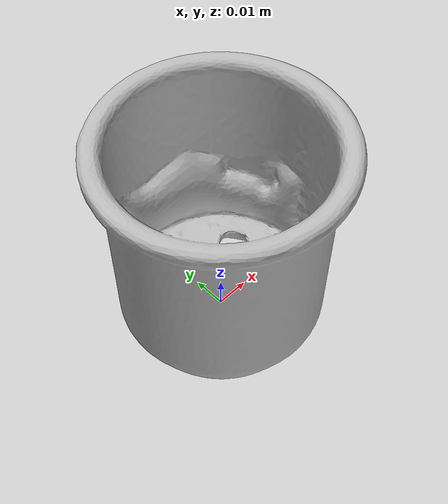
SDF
<?xml version="1.0" ?>
<sdf version='1.8'>
  <model name='ycb_065-d_cups'>
    <link name='body'>
      <inertial>
        <mass>0.028</mass>
        <pose>0.00124485032 0.0026623351 0.0317890433 0 0 0</pose>
        <inertia>
          <ixx>2.29838163669e-05</ixx>
          <ixy>-9.66876916043e-08</ixy>
          <ixz>3.52642946832e-07</ixz>
          <iyy>2.24487181913e-05</iyy>
          <iyz>7.62513764561e-07</iyz>
          <izz>2.17291829964e-05</izz>
        </inertia>
      </inertial>
      <visual name='ycb_065-d_cups_visual'>
        <pose>0.019622 0.062449 0.000206 0 0 0</pose>
        <geometry>
          <mesh>
            <uri>model://ycb_065-d_cups/meshes/textured.dae</uri>
          </mesh>
        </geometry>
      </visual>
      <collision name='ycb_065-d_cups_collision'>
        <pose>0.019622 0.062449 0.000206 0 0 0</pose>
        <geometry>
          <mesh>
            <uri>model://ycb_065-d_cups/meshes/nontextured.stl</uri>
          </mesh>
        </geometry>
        <max_contacts>10</max_contacts>
        <surface>
          <contact>
            <ode>
              <kp>1e15</kp>
              <kd>1e13</kd>
            </ode>
          </contact>
        </surface>
      </collision>
    </link>
  </model>
</sdf>
